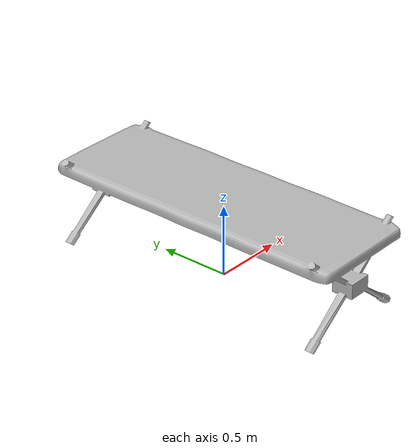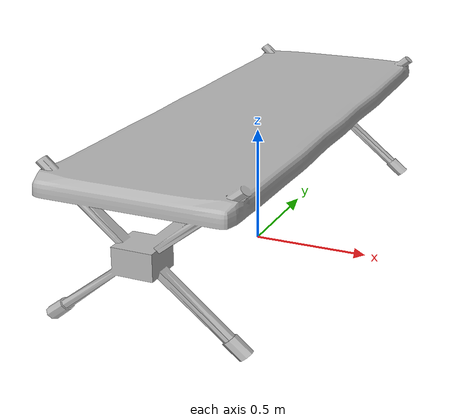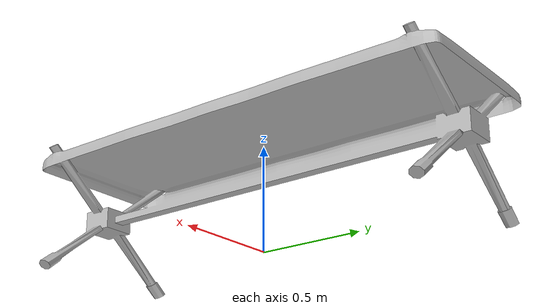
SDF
<?xml version="1.0" ?>
<sdf version='1.5'>
  <model name='bed_add'>
    <static>true</static>
      <link name='bed_add'>
        <pose frame=''>0 0 0.4 1.57 0 0</pose>
         <collision name='bed_add'>
          <geometry>
            <mesh>
              <scale>0.5 0.5 0.5</scale>
              <uri>model://bed_add/bed.dae</uri>
            </mesh>
          </geometry>
          <max_contacts>10</max_contacts>
        </collision>
        <visual name='bed_add'>
        <cast_shadows>false</cast_shadows>
          <geometry>
            <mesh>
              <scale>0.5 0.5 0.5</scale>
              <uri>model://bed_add/bed.dae</uri>
            </mesh>
          </geometry>
          <material>
            <script>
              <name>bed_add</name>
              <uri>model://bed_add/bed.dae</uri>
            </script>
          </material>
        </visual>
      </link>
  </model>
</sdf>
